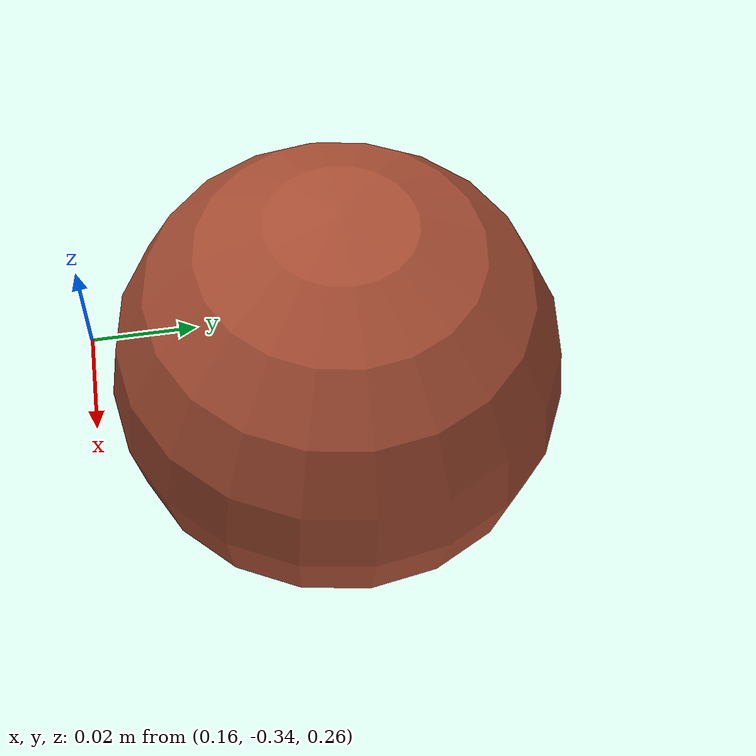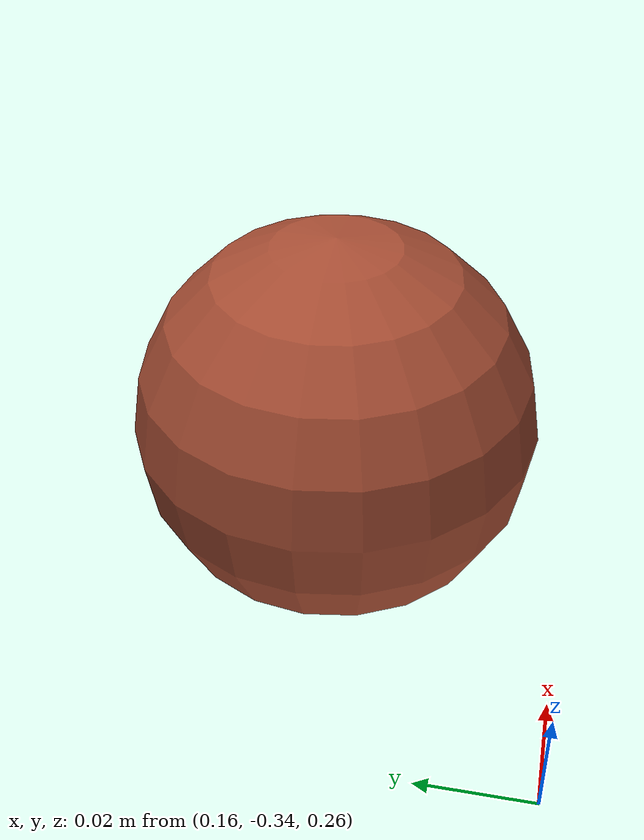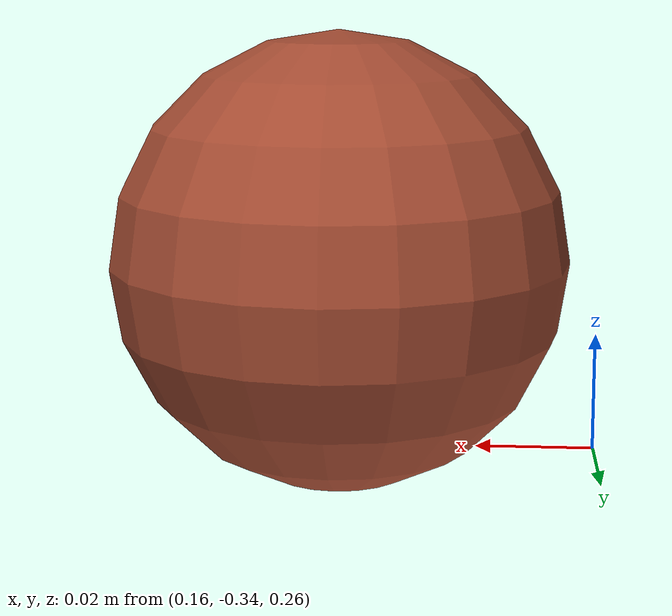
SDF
<?xml version='1.0'?>
<sdf version='1.7'>

    <model name="Ball">
      <link name='Ball'>
            <pose>0.2 -0.3 0.3 0 -0 0</pose>
            <self_collide>0</self_collide>
            <kinematic>1</kinematic>
            <inertial>
                <mass>0.005</mass>
                <inertia>
                  <ixx>0.001</ixx>
                  <ixy>0.000</ixy>
                  <ixz>0.000</ixz>
                  <iyy>0.001</iyy>
                  <iyz>0.000</iyz>
                  <izz>0.001</izz>
                </inertia>
            </inertial>

            <visual name='Ball_visual'>
              <geometry>
                <sphere>
                  <radius>0.033 </radius>
                </sphere>
              </geometry>
              <material>
                <script>
                  <uri>file://media/materials/scripts/gazebo.material</uri>
                  <name>Gazebo/Bricks</name>
                </script>
                <pbr>
                  <metal>
                    <albedo_map>materials/textures/ballon.jpg</albedo_map>
                  </metal>
                </pbr>
                <ambient>1 1 1 1</ambient>
                <diffuse>1 1 1 1</diffuse>
                <specular>0.1 0.1 0.1 1</specular>
                <emissive>0 0 0 1</emissive>
              </material>
              <cast_shadows>1</cast_shadows>
              <transparency>0</transparency>
            </visual>

            <collision name='ball_collision'>
              <laser_retro>0</laser_retro>
              <max_contacts>10</max_contacts>
              <geometry>
                <sphere>
                  <radius>0.033 </radius>
                </sphere>
              </geometry>
              <surface>
                <friction>
                  <ode>
                    <mu>100</mu>
                    <mu2>50</mu2>
                    <fdir1>0 0 0</fdir1>
                    <slip1>0</slip1>
                    <slip2>0</slip2>
                  </ode>
                  <torsional>
                    <coefficient>1</coefficient>
                    <patch_radius>0</patch_radius>
                    <surface_radius>0</surface_radius>
                    <use_patch_radius>1</use_patch_radius>
                    <ode>
                      <slip>0</slip>
                    </ode>
                  </torsional>
                </friction>
                <bounce>
                  <restitution_coefficient>0</restitution_coefficient>
                  <threshold>1e+06</threshold>
                </bounce>
                <contact>
                  <collide_without_contact>0</collide_without_contact>
                  <collide_without_contact_bitmask>1</collide_without_contact_bitmask>
                  <collide_bitmask>1</collide_bitmask>
                  <ode>
                    <soft_cfm>0</soft_cfm>
                    <soft_erp>0.2</soft_erp>
                    <kp>1e+13</kp>
                    <kd>1</kd>
                    <max_vel>0.01</max_vel>
                    <min_depth>0</min_depth>
                  </ode>
                  <bullet>
                    <split_impulse>1</split_impulse>
                    <split_impulse_penetration_threshold>-0.01</split_impulse_penetration_threshold>
                    <soft_cfm>0</soft_cfm>
                    <soft_erp>0.2</soft_erp>
                    <kp>1e+13</kp>
                    <kd>1</kd>
                  </bullet>
                </contact>
              </surface>
            </collision>
          </link>
      </model>
</sdf>
